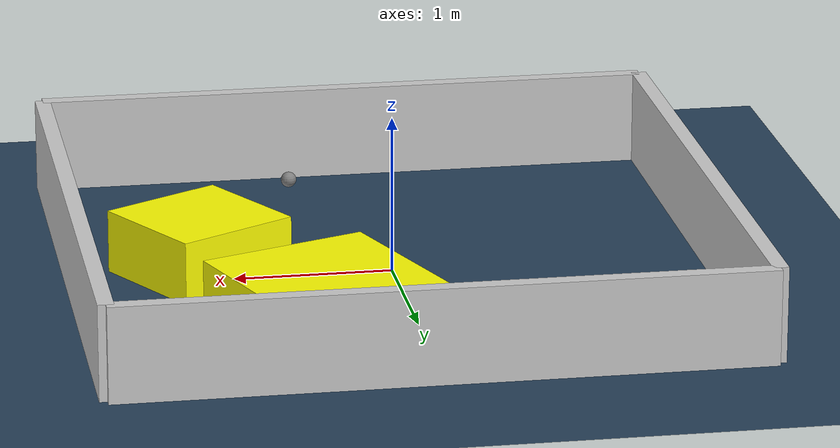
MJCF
<?xml version="1.0" ?>
<mujoco model="generated_environment">
  <option timestep="0.01" integrator="RK4" cone="elliptic"/>
  <default>
    <geom density="1"/>
  </default>
  <asset>
    <texture builtin="gradient" height="3072" rgb1="0.3 0.5 0.7" rgb2="0 0 0" type="skybox" width="512"/>
    <texture builtin="checker" height="300" mark="edge" markrgb="0.8 0.8 0.8" name="groundplane" rgb1="0.2 0.3 0.4" rgb2="0.1 0.2 0.3" type="2d" width="300"/>
    <material name="groundplane" reflectance="0.2" texrepeat="5 5" texture="groundplane" texuniform="true"/>
    <material name="robot" rgba="0.0 1.0 0.0 1"/>
  </asset>
  <worldbody>
    <light dir="0 0 -1" directional="true" pos="0 0 1.5"/>
    <geom condim="4" friction="1.0 0.005 0.001" material="groundplane" name="floor" size="0 0 0.05" type="plane"/>
    <body name="walls">
      <geom name="wall_1" condim="4" pos="-2.0 0.0 0.3" rgba="0.800000011920929 0.800000011920929 0.800000011920929 1.0" size="0.05 2.0 0.3" type="box"/>
      <geom name="wall_2" condim="4" pos="2.0 0.0 0.3" rgba="0.800000011920929 0.800000011920929 0.800000011920929 1.0" size="0.05 2.0 0.3" type="box"/>
      <geom name="wall_3" condim="4" pos="0.0 -2.0 0.3" rgba="0.800000011920929 0.800000011920929 0.800000011920929 1.0" size="2.0 0.05 0.3" type="box"/>
      <geom name="wall_4" condim="4" pos="0.0 2.0 0.3" rgba="0.800000011920929 0.800000011920929 0.800000011920929 1.0" size="2.0 0.05 0.3" type="box"/>
    </body>
    <body name="robot">
      <joint name="joint_x" type="slide" pos="0 0 0" axis="1 0 0"/>
      <joint name="joint_y" type="slide" pos="0 0 0" axis="0 1 0"/>
      <geom name="robot" type="sphere" pos="0.4677095348566942 -1.3096152850324474 0.2" size="0.05" mass="5." friction="1.0 0.005 0.0001" condim="4"/>
      <site name="sensor_ball"/>
    </body>
    <body name="obstacle_1_movable">
      <geom name="obstacle_1_movable" condim="4" pos="1.197031450025602 -0.12395761091132029 0.2" euler="0 0 29.858333188388563" friction="1.0 0.005 0.001" rgba="1 1 0 1" size="0.41057041148880197 0.40583921294677466 0.2" type="box" mass="0.1"/>
      <joint type="free"/>
    </body>
    <body name="obstacle_2_movable">
      <geom name="obstacle_2_movable" condim="4" pos="0.5787413477551011 1.083307722933024 0.2" euler="0 0 200.5233535781374" friction="1.0 0.005 0.001" rgba="1 1 0 1" size="0.5464618940165358 0.5491253766814339 0.2" type="box" mass="0.1"/>
      <joint type="free"/>
    </body>
  </worldbody>
  <actuator>
    <motor name="actuator_x" joint="joint_x" gear="1" ctrlrange="-1 1"/>
    <motor name="actuator_y" joint="joint_y" gear="1" ctrlrange="-1 1"/>
  </actuator>
</mujoco>
